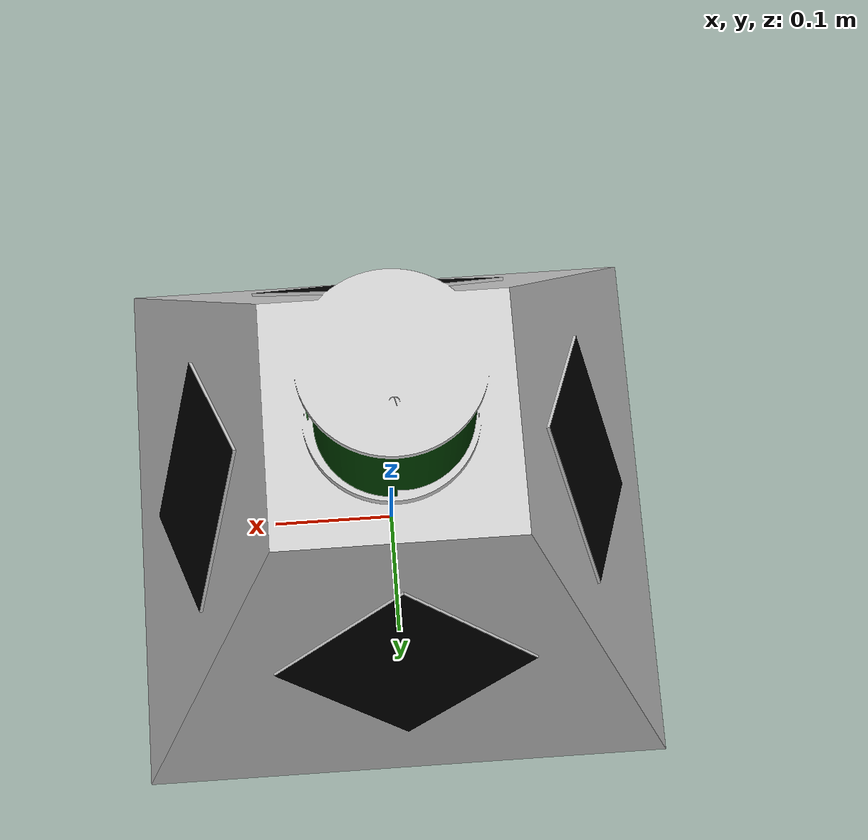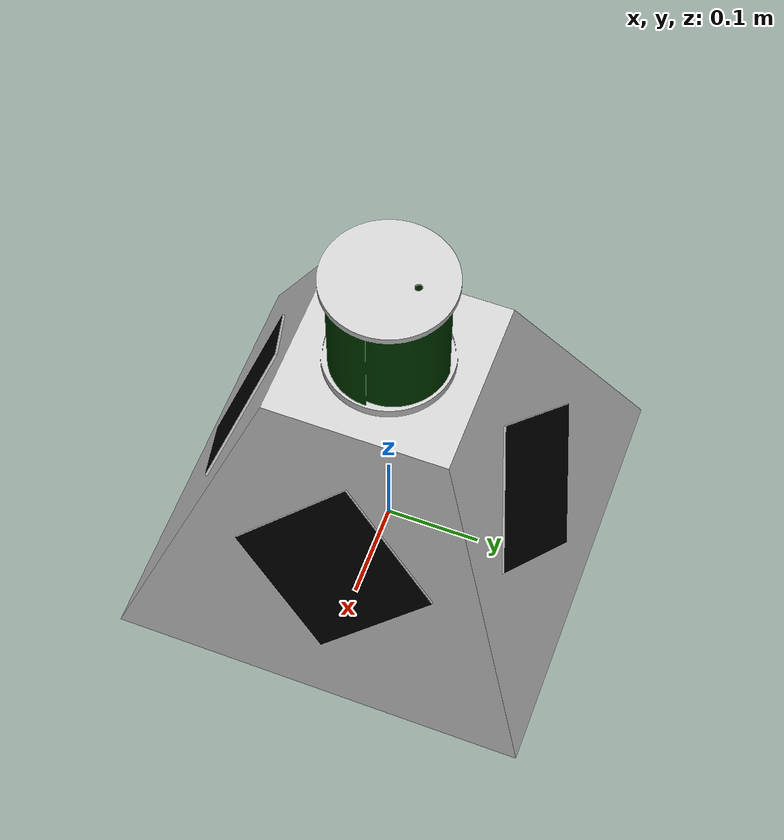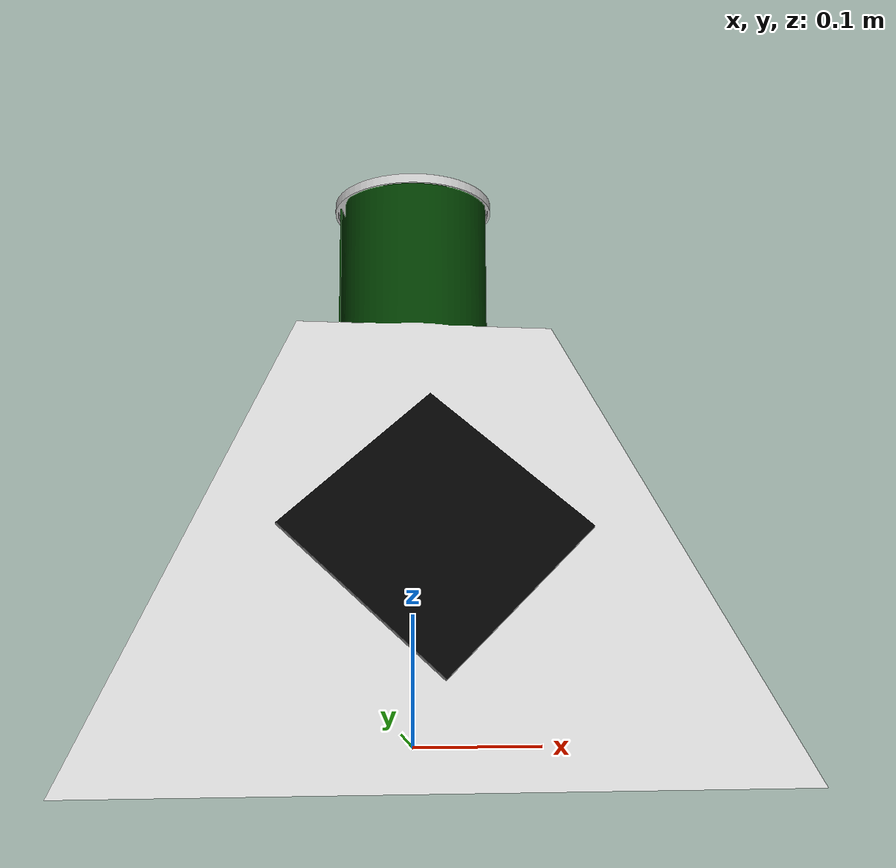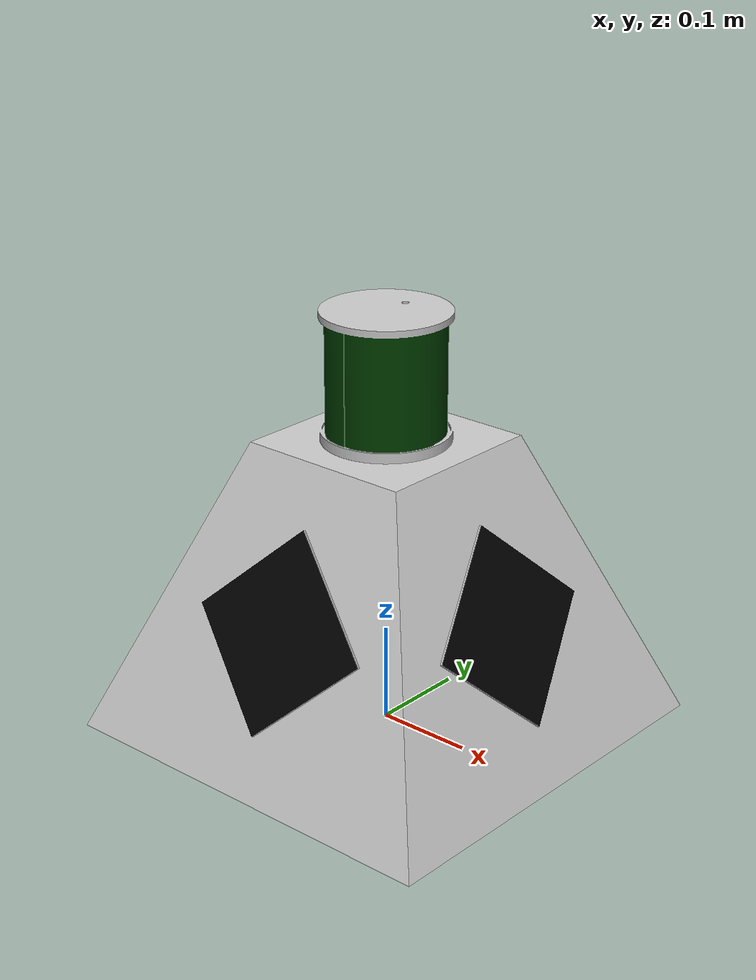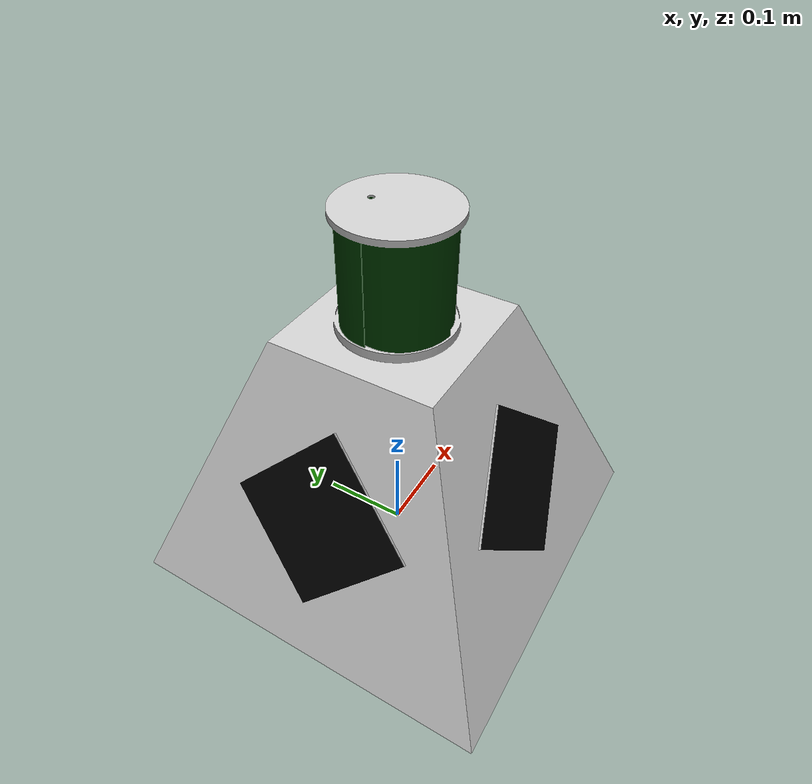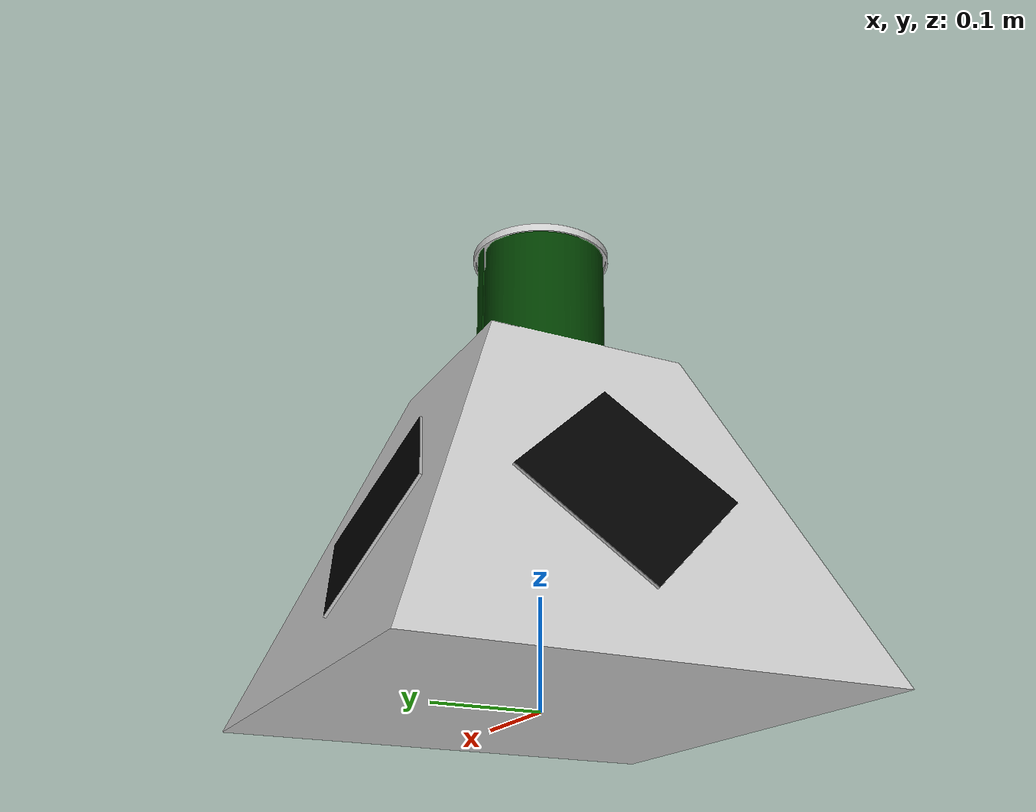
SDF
<?xml version='1.0'?>
<sdf version='1.6'>
  <model name='Green Colour Indicator'>
    <static>false</static>
    <plugin
        filename="gz-waves1-hydrodynamics-system"
        name="gz::sim::systems::Hydrodynamics">
    </plugin>
    <link name="base_link">
      <visual name="visual">
        <pose>0 0 0 0 0 0</pose>
        <geometry>
          <mesh>
            <uri>model://ColourIndicatorGreen/meshes/ColourIndicatorGreen.dae</uri>
            <scale>0.001 0.001 0.001</scale>
          </mesh>
        </geometry>
      </visual>
      <collision name="collision">
        <pose>0 0 0 0 0 0</pose>
        <geometry>
          <sphere>
            <radius>0.25</radius>
          </sphere>
        </geometry>
      </collision>
      <inertial>
        <pose>0 0 0 0 0 0</pose>
        <mass>20</mass>
        <inertia>
          <ixx>0.1636</ixx>
          <ixy>0.0</ixy>
          <ixz>0.0</ixz>
          <iyy>0.1636</iyy>
          <iyz>0.0</iyz>
          <izz>0.1636</izz>
        </inertia>
      </inertial>
    </link>
  </model>
</sdf>
